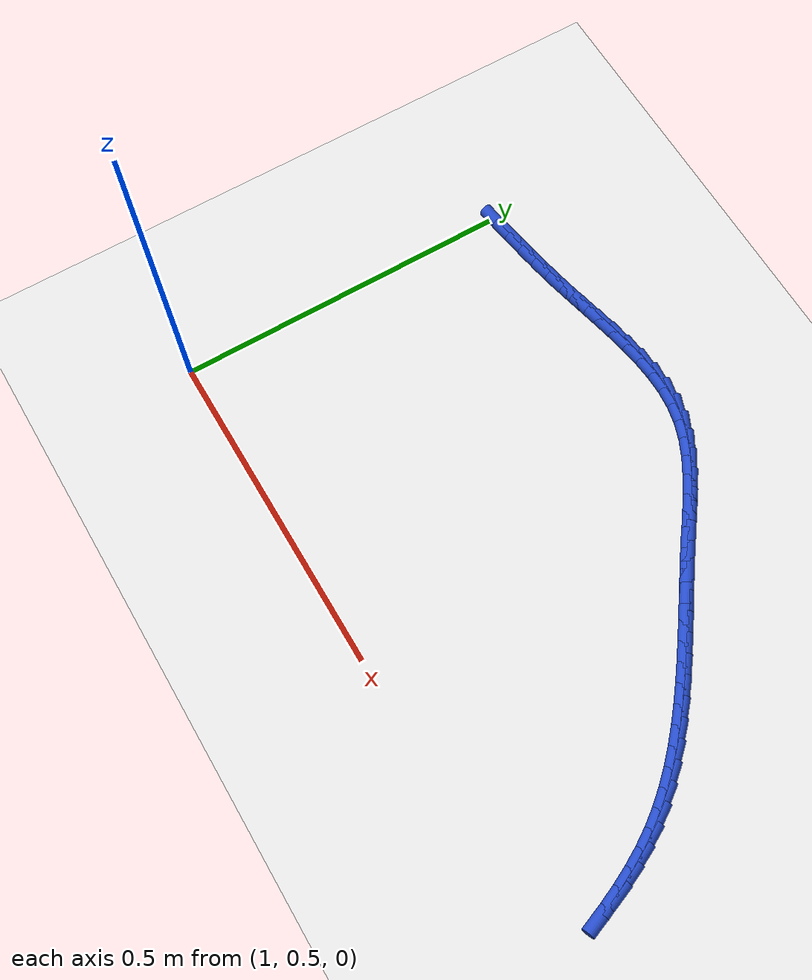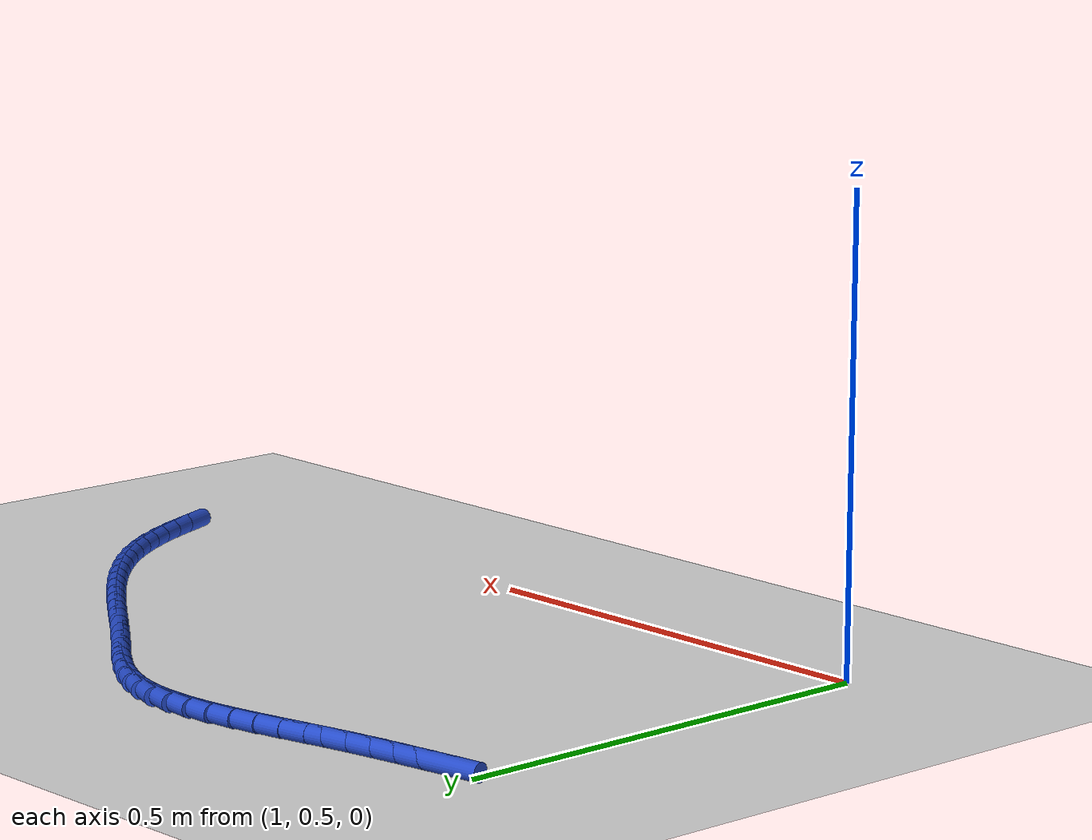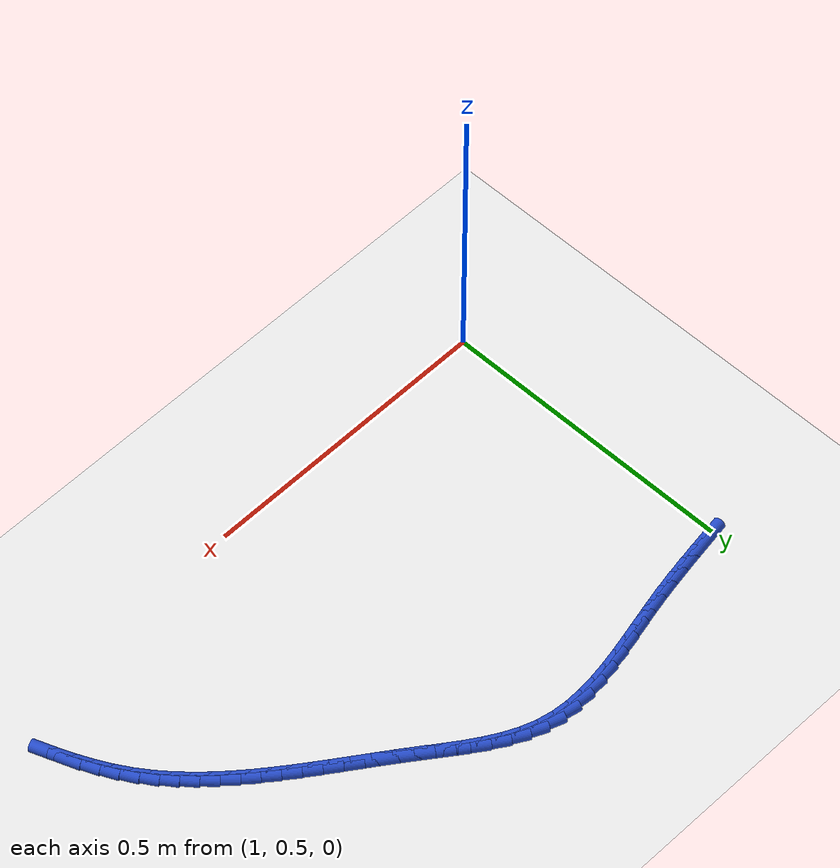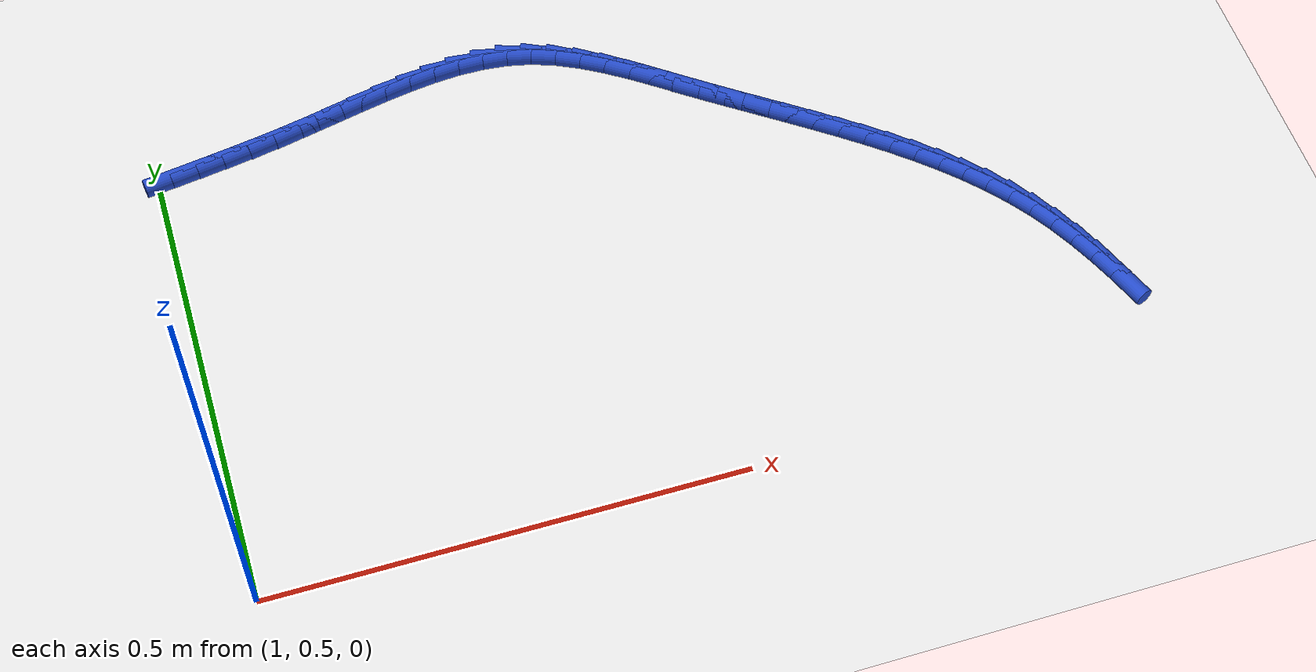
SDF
<sdf version="1.6">
 <world name="default">
  <model name="ground_plane">
   <static>1</static>
   <link name="link">
    <collision name="collision">
     <geometry><plane><normal>0 0 1</normal><size>100 100</size></plane></geometry>
     <surface><friction><ode><mu>100</mu><mu2>50</mu2></ode></friction></surface>
    </collision>
    <visual name="visual">
     <cast_shadows>0</cast_shadows>
     <geometry><plane><normal>0 0 1</normal><size>100 100</size></plane></geometry>
     <material>
      <script><uri>file://media/materials/scripts/gazebo.material</uri><name>Gazebo/WhiteGlow</name></script>
     </material>
    </visual>
   </link>
  </model>
  <model name="line">
   <link name="link_55">
    <pose>1.025591185893873 1.0081959456733693 0.01 0 1.57 0.15274449834497703</pose>
    <collision name="collision">
     <geometry><cylinder><radius>0.01</radius><length>0.08</length></cylinder></geometry>
    </collision>
    <visual name="visual">
     <material>
      <script><name>Gazebo/Blue</name><uri>file://media/materials/scripts/gazebo.material</uri></script>
     </material>
     <geometry><cylinder><radius>0.01</radius><length>0.08</length></cylinder></geometry>
    </visual>
   </link>
   <link name="link_56">
    <pose>1.0540436671600986 1.012576022435806 0.01 0 1.57 0.15959796919507002</pose>
    <collision name="collision">
     <geometry><cylinder><radius>0.01</radius><length>0.08</length></cylinder></geometry>
    </collision>
    <visual name="visual">
     <material>
      <script><name>Gazebo/Blue</name><uri>file://media/materials/scripts/gazebo.material</uri></script>
     </material>
     <geometry><cylinder><radius>0.01</radius><length>0.08</length></cylinder></geometry>
    </visual>
   </link>
   <link name="link_57">
    <pose>1.082658214277052 1.0171820198538 0.01 0 1.57 0.17080412431810776</pose>
    <collision name="collision">
     <geometry><cylinder><radius>0.01</radius><length>0.08</length></cylinder></geometry>
    </collision>
    <visual name="visual">
     <material>
      <script><name>Gazebo/Blue</name><uri>file://media/materials/scripts/gazebo.material</uri></script>
     </material>
     <geometry><cylinder><radius>0.01</radius><length>0.08</length></cylinder></geometry>
    </visual>
   </link>
   <link name="link_58">
    <pose>1.1114539324543788 1.0221488422581175 0.01 0 1.57 0.1862074624738569</pose>
    <collision name="collision">
     <geometry><cylinder><radius>0.01</radius><length>0.08</length></cylinder></geometry>
    </collision>
    <visual name="visual">
     <material>
      <script><name>Gazebo/Blue</name><uri>file://media/materials/scripts/gazebo.material</uri></script>
     </material>
     <geometry><cylinder><radius>0.01</radius><length>0.08</length></cylinder></geometry>
    </visual>
   </link>
   <link name="link_59">
    <pose>1.1404499269017243 1.0276113939795244 0.01 0 1.57 0.2055486253908169</pose>
    <collision name="collision">
     <geometry><cylinder><radius>0.01</radius><length>0.08</length></cylinder></geometry>
    </collision>
    <visual name="visual">
     <material>
      <script><name>Gazebo/Blue</name><uri>file://media/materials/scripts/gazebo.material</uri></script>
     </material>
     <geometry><cylinder><radius>0.01</radius><length>0.08</length></cylinder></geometry>
    </visual>
   </link>
   <link name="link_60">
    <pose>1.1696648374953547 1.0337025049223767 0.01 0 1.57 0.22237080389469602</pose>
    <collision name="collision">
     <geometry><cylinder><radius>0.01</radius><length>0.08</length></cylinder></geometry>
    </collision>
    <visual name="visual">
     <material>
      <script><name>Gazebo/Blue</name><uri>file://media/materials/scripts/gazebo.material</uri></script>
     </material>
     <geometry><cylinder><radius>0.01</radius><length>0.08</length></cylinder></geometry>
    </visual>
   </link>
   <link name="link_61">
    <pose>1.1990716973731266 1.0403516930710108 0.01 0 1.57 0.2255183421538735</pose>
    <collision name="collision">
     <geometry><cylinder><radius>0.01</radius><length>0.08</length></cylinder></geometry>
    </collision>
    <visual name="visual">
     <material>
      <script><name>Gazebo/Blue</name><uri>file://media/materials/scripts/gazebo.material</uri></script>
     </material>
     <geometry><cylinder><radius>0.01</radius><length>0.08</length></cylinder></geometry>
    </visual>
   </link>
   <link name="link_62">
    <pose>1.2285602045601212 1.0471169738122497 0.01 0 1.57 0.2139766904690584</pose>
    <collision name="collision">
     <geometry><cylinder><radius>0.01</radius><length>0.08</length></cylinder></geometry>
    </collision>
    <visual name="visual">
     <material>
      <script><name>Gazebo/Blue</name><uri>file://media/materials/scripts/gazebo.material</uri></script>
     </material>
     <geometry><cylinder><radius>0.01</radius><length>0.08</length></cylinder></geometry>
    </visual>
   </link>
   <link name="link_63">
    <pose>1.2580111753238985 1.0535167682265085 0.01 0 1.57 0.1873277203398336</pose>
    <collision name="collision">
     <geometry><cylinder><radius>0.01</radius><length>0.08</length></cylinder></geometry>
    </collision>
    <visual name="visual">
     <material>
      <script><name>Gazebo/Blue</name><uri>file://media/materials/scripts/gazebo.material</uri></script>
     </material>
     <geometry><cylinder><radius>0.01</radius><length>0.08</length></cylinder></geometry>
    </visual>
   </link>
   <link name="link_64">
    <pose>1.2873054259320185 1.0590694973942036 0.01 0 1.57 0.14455073356745138</pose>
    <collision name="collision">
     <geometry><cylinder><radius>0.01</radius><length>0.08</length></cylinder></geometry>
    </collision>
    <visual name="visual">
     <material>
      <script><name>Gazebo/Blue</name><uri>file://media/materials/scripts/gazebo.material</uri></script>
     </material>
     <geometry><cylinder><radius>0.01</radius><length>0.08</length></cylinder></geometry>
    </visual>
   </link>
   <link name="link_65">
    <pose>1.3163237726520411 1.063293582395751 0.01 0 1.57 0.08413311032034433</pose>
    <collision name="collision">
     <geometry><cylinder><radius>0.01</radius><length>0.08</length></cylinder></geometry>
    </collision>
    <visual name="visual">
     <material>
      <script><name>Gazebo/Blue</name><uri>file://media/materials/scripts/gazebo.material</uri></script>
     </material>
     <geometry><cylinder><radius>0.01</radius><length>0.08</length></cylinder></geometry>
    </visual>
   </link>
   <link name="link_66">
    <pose>1.3449470317515266 1.0657074443115666 0.01 0 1.57 0.004342352859184883</pose>
    <collision name="collision">
     <geometry><cylinder><radius>0.01</radius><length>0.08</length></cylinder></geometry>
    </collision>
    <visual name="visual">
     <material>
      <script><name>Gazebo/Blue</name><uri>file://media/materials/scripts/gazebo.material</uri></script>
     </material>
     <geometry><cylinder><radius>0.01</radius><length>0.08</length></cylinder></geometry>
    </visual>
   </link>
   <link name="link_67">
    <pose>1.3730560194980346 1.0658295042220658 0.01 0 1.57 -0.09619967052849505</pose>
    <collision name="collision">
     <geometry><cylinder><radius>0.01</radius><length>0.08</length></cylinder></geometry>
    </collision>
    <visual name="visual">
     <material>
      <script><name>Gazebo/Blue</name><uri>file://media/materials/scripts/gazebo.material</uri></script>
     </material>
     <geometry><cylinder><radius>0.01</radius><length>0.08</length></cylinder></geometry>
    </visual>
   </link>
   <link name="link_68">
    <pose>1.4005315521591255 1.063178183207665 0.01 0 1.57 -0.2174597473291746</pose>
    <collision name="collision">
     <geometry><cylinder><radius>0.01</radius><length>0.08</length></cylinder></geometry>
    </collision>
    <visual name="visual">
     <material>
      <script><name>Gazebo/Blue</name><uri>file://media/materials/scripts/gazebo.material</uri></script>
     </material>
     <geometry><cylinder><radius>0.01</radius><length>0.08</length></cylinder></geometry>
    </visual>
   </link>
   <link name="link_69">
    <pose>1.4272548723546117 1.0572735680588703 0.01 0 1.57 -0.3452900698255965</pose>
    <collision name="collision">
     <geometry><cylinder><radius>0.01</radius><length>0.08</length></cylinder></geometry>
    </collision>
    <visual name="visual">
     <material>
      <script><name>Gazebo/Blue</name><uri>file://media/materials/scripts/gazebo.material</uri></script>
     </material>
     <geometry><cylinder><radius>0.01</radius><length>0.08</length></cylinder></geometry>
    </visual>
   </link>
   <link name="link_70">
    <pose>1.4531866138608027 1.0479459178460448 0.01 0 1.57 -0.4512896890206143</pose>
    <collision name="collision">
     <geometry><cylinder><radius>0.01</radius><length>0.08</length></cylinder></geometry>
    </collision>
    <visual name="visual">
     <material>
      <script><name>Gazebo/Blue</name><uri>file://media/materials/scripts/gazebo.material</uri></script>
     </material>
     <geometry><cylinder><radius>0.01</radius><length>0.08</length></cylinder></geometry>
    </visual>
   </link>
   <link name="link_71">
    <pose>1.4784594251466248 1.0356975336116492 0.01 0 1.57 -0.5319905905998654</pose>
    <collision name="collision">
     <geometry><cylinder><radius>0.01</radius><length>0.08</length></cylinder></geometry>
    </collision>
    <visual name="visual">
     <material>
      <script><name>Gazebo/Blue</name><uri>file://media/materials/scripts/gazebo.material</uri></script>
     </material>
     <geometry><cylinder><radius>0.01</radius><length>0.08</length></cylinder></geometry>
    </visual>
   </link>
   <link name="link_72">
    <pose>1.50322845639373 1.0211186280478142 0.01 0 1.57 -0.5891059102644991</pose>
    <collision name="collision">
     <geometry><cylinder><radius>0.01</radius><length>0.08</length></cylinder></geometry>
    </collision>
    <visual name="visual">
     <material>
      <script><name>Gazebo/Blue</name><uri>file://media/materials/scripts/gazebo.material</uri></script>
     </material>
     <geometry><cylinder><radius>0.01</radius><length>0.08</length></cylinder></geometry>
    </visual>
   </link>
   <link name="link_73">
    <pose>1.5276488577837697 1.004799413846672 0.01 0 1.57 -0.6247274852756172</pose>
    <collision name="collision">
     <geometry><cylinder><radius>0.01</radius><length>0.08</length></cylinder></geometry>
    </collision>
    <visual name="visual">
     <material>
      <script><name>Gazebo/Blue</name><uri>file://media/materials/scripts/gazebo.material</uri></script>
     </material>
     <geometry><cylinder><radius>0.01</radius><length>0.08</length></cylinder></geometry>
    </visual>
   </link>
   <link name="link_74">
    <pose>1.551875779498397 0.9873301037003539 0.01 0 1.57 -0.6405244717120651</pose>
    <collision name="collision">
     <geometry><cylinder><radius>0.01</radius><length>0.08</length></cylinder></geometry>
    </collision>
    <visual name="visual">
     <material>
      <script><name>Gazebo/Blue</name><uri>file://media/materials/scripts/gazebo.material</uri></script>
     </material>
     <geometry><cylinder><radius>0.01</radius><length>0.08</length></cylinder></geometry>
    </visual>
   </link>
   <link name="link_75">
    <pose>1.5760643717192635 0.9693009103009919 0.01 0 1.57 -0.6377240859548199</pose>
    <collision name="collision">
     <geometry><cylinder><radius>0.01</radius><length>0.08</length></cylinder></geometry>
    </collision>
    <visual name="visual">
     <material>
      <script><name>Gazebo/Blue</name><uri>file://media/materials/scripts/gazebo.material</uri></script>
     </material>
     <geometry><cylinder><radius>0.01</radius><length>0.08</length></cylinder></geometry>
    </visual>
   </link>
   <link name="link_76">
    <pose>1.600366132557497 0.9512930079767797 0.01 0 1.57 -0.6269550194163164</pose>
    <collision name="collision">
     <geometry><cylinder><radius>0.01</radius><length>0.08</length></cylinder></geometry>
    </collision>
    <visual name="visual">
     <material>
      <script><name>Gazebo/Blue</name><uri>file://media/materials/scripts/gazebo.material</uri></script>
     </material>
     <geometry><cylinder><radius>0.01</radius><length>0.08</length></cylinder></geometry>
    </visual>
   </link>
   <link name="link_77">
    <pose>1.6248100373235916 0.9335843442547185 0.01 0 1.57 -0.6208900457566988</pose>
    <collision name="collision">
     <geometry><cylinder><radius>0.01</radius><length>0.08</length></cylinder></geometry>
    </collision>
    <visual name="visual">
     <material>
      <script><name>Gazebo/Blue</name><uri>file://media/materials/scripts/gazebo.material</uri></script>
     </material>
     <geometry><cylinder><radius>0.01</radius><length>0.08</length></cylinder></geometry>
    </visual>
   </link>
   <link name="link_78">
    <pose>1.6492763188886361 0.9160847499205257 0.01 0 1.57 -0.6203286178116589</pose>
    <collision name="collision">
     <geometry><cylinder><radius>0.01</radius><length>0.08</length></cylinder></geometry>
    </collision>
    <visual name="visual">
     <material>
      <script><name>Gazebo/Blue</name><uri>file://media/materials/scripts/gazebo.material</uri></script>
     </material>
     <geometry><cylinder><radius>0.01</radius><length>0.08</length></cylinder></geometry>
    </visual>
   </link>
   <link name="link_79">
    <pose>1.6736362522315382 0.898681886229206 0.01 0 1.57 -0.6253477756514012</pose>
    <collision name="collision">
     <geometry><cylinder><radius>0.01</radius><length>0.08</length></cylinder></geometry>
    </collision>
    <visual name="visual">
     <material>
      <script><name>Gazebo/Blue</name><uri>file://media/materials/scripts/gazebo.material</uri></script>
     </material>
     <geometry><cylinder><radius>0.01</radius><length>0.08</length></cylinder></geometry>
    </visual>
   </link>
   <link name="link_80">
    <pose>1.6977611123312055 0.8812634144357652 0.01 0 1.57 -0.6360697388973086</pose>
    <collision name="collision">
     <geometry><cylinder><radius>0.01</radius><length>0.08</length></cylinder></geometry>
    </collision>
    <visual name="visual">
     <material>
      <script><name>Gazebo/Blue</name><uri>file://media/materials/scripts/gazebo.material</uri></script>
     </material>
     <geometry><cylinder><radius>0.01</radius><length>0.08</length></cylinder></geometry>
    </visual>
   </link>
   <link name="link_81">
    <pose>1.7215221741665465 0.8637169957952088 0.01 0 1.57 -0.6526599198244101</pose>
    <collision name="collision">
     <geometry><cylinder><radius>0.01</radius><length>0.08</length></cylinder></geometry>
    </collision>
    <visual name="visual">
     <material>
      <script><name>Gazebo/Blue</name><uri>file://media/materials/scripts/gazebo.material</uri></script>
     </material>
     <geometry><cylinder><radius>0.01</radius><length>0.08</length></cylinder></geometry>
    </visual>
   </link>
   <link name="link_82">
    <pose>1.7447907127164677 0.8459302915625423 0.01 0 1.57 -0.6753194431379613</pose>
    <collision name="collision">
     <geometry><cylinder><radius>0.01</radius><length>0.08</length></cylinder></geometry>
    </collision>
    <visual name="visual">
     <material>
      <script><name>Gazebo/Blue</name><uri>file://media/materials/scripts/gazebo.material</uri></script>
     </material>
     <geometry><cylinder><radius>0.01</radius><length>0.08</length></cylinder></geometry>
    </visual>
   </link>
   <link name="link_83">
    <pose>1.7674380029598775 0.8277909629927702 0.01 0 1.57 -0.704270582120666</pose>
    <collision name="collision">
     <geometry><cylinder><radius>0.01</radius><length>0.08</length></cylinder></geometry>
    </collision>
    <visual name="visual">
     <material>
      <script><name>Gazebo/Blue</name><uri>file://media/materials/scripts/gazebo.material</uri></script>
     </material>
     <geometry><cylinder><radius>0.01</radius><length>0.08</length></cylinder></geometry>
    </visual>
   </link>
   <link name="link_84">
    <pose>1.7893353198756836 0.809186671340899 0.01 0 1.57 -0.7397330313398277</pose>
    <collision name="collision">
     <geometry><cylinder><radius>0.01</radius><length>0.08</length></cylinder></geometry>
    </collision>
    <visual name="visual">
     <material>
      <script><name>Gazebo/Blue</name><uri>file://media/materials/scripts/gazebo.material</uri></script>
     </material>
     <geometry><cylinder><radius>0.01</radius><length>0.08</length></cylinder></geometry>
    </visual>
   </link>
   <link name="link_85">
    <pose>1.8103539384427936 0.7900050778619335 0.01 0 1.57 -0.7818888342430856</pose>
    <collision name="collision">
     <geometry><cylinder><radius>0.01</radius><length>0.08</length></cylinder></geometry>
    </collision>
    <visual name="visual">
     <material>
      <script><name>Gazebo/Blue</name><uri>file://media/materials/scripts/gazebo.material</uri></script>
     </material>
     <geometry><cylinder><radius>0.01</radius><length>0.08</length></cylinder></geometry>
    </visual>
   </link>
   <link name="link_86">
    <pose>1.830365133640115 0.7701338438108795 0.01 0 1.57 -0.8308345231119459</pose>
    <collision name="collision">
     <geometry><cylinder><radius>0.01</radius><length>0.08</length></cylinder></geometry>
    </collision>
    <visual name="visual">
     <material>
      <script><name>Gazebo/Blue</name><uri>file://media/materials/scripts/gazebo.material</uri></script>
     </material>
     <geometry><cylinder><radius>0.01</radius><length>0.08</length></cylinder></geometry>
    </visual>
   </link>
   <link name="link_87">
    <pose>1.8492401804465555 0.7494606304427421 0.01 0 1.57 -0.8865212134596853</pose>
    <collision name="collision">
     <geometry><cylinder><radius>0.01</radius><length>0.08</length></cylinder></geometry>
    </collision>
    <visual name="visual">
     <material>
      <script><name>Gazebo/Blue</name><uri>file://media/materials/scripts/gazebo.material</uri></script>
     </material>
     <geometry><cylinder><radius>0.01</radius><length>0.08</length></cylinder></geometry>
    </visual>
   </link>
   <link name="link_88">
    <pose>1.866850353841023 0.7278730990125264 0.01 0 1.57 -0.948687541981576</pose>
    <collision name="collision">
     <geometry><cylinder><radius>0.01</radius><length>0.08</length></cylinder></geometry>
    </collision>
    <visual name="visual">
     <material>
      <script><name>Gazebo/Blue</name><uri>file://media/materials/scripts/gazebo.material</uri></script>
     </material>
     <geometry><cylinder><radius>0.01</radius><length>0.08</length></cylinder></geometry>
    </visual>
   </link>
   <link name="link_89">
    <pose>1.883066928802426 0.7052589107752386 0.01 0 1.57 -1.0153926227673609</pose>
    <collision name="collision">
     <geometry><cylinder><radius>0.01</radius><length>0.08</length></cylinder></geometry>
    </collision>
    <visual name="visual">
     <material>
      <script><name>Gazebo/Blue</name><uri>file://media/materials/scripts/gazebo.material</uri></script>
     </material>
     <geometry><cylinder><radius>0.01</radius><length>0.08</length></cylinder></geometry>
    </visual>
   </link>
   <link name="link_90">
    <pose>1.8977922448586817 0.6815300228409591 0.01 0 1.57 -1.0767446248066326</pose>
    <collision name="collision">
     <geometry><cylinder><radius>0.01</radius><length>0.08</length></cylinder></geometry>
    </collision>
    <visual name="visual">
     <material>
      <script><name>Gazebo/Blue</name><uri>file://media/materials/scripts/gazebo.material</uri></script>
     </material>
     <geometry><cylinder><radius>0.01</radius><length>0.08</length></cylinder></geometry>
    </visual>
   </link>
   <link name="link_91">
    <pose>1.911134007705103 0.6567590109928068 0.01 0 1.57 -1.1288276370921122</pose>
    <collision name="collision">
     <geometry><cylinder><radius>0.01</radius><length>0.08</length></cylinder></geometry>
    </collision>
    <visual name="visual">
     <material>
      <script><name>Gazebo/Blue</name><uri>file://media/materials/scripts/gazebo.material</uri></script>
     </material>
     <geometry><cylinder><radius>0.01</radius><length>0.08</length></cylinder></geometry>
    </visual>
   </link>
   <link name="link_92">
    <pose>1.9232832778422686 0.6310836435350562 0.01 0 1.57 -1.1718017173528272</pose>
    <collision name="collision">
     <geometry><cylinder><radius>0.01</radius><length>0.08</length></cylinder></geometry>
    </collision>
    <visual name="visual">
     <material>
      <script><name>Gazebo/Blue</name><uri>file://media/materials/scripts/gazebo.material</uri></script>
     </material>
     <geometry><cylinder><radius>0.01</radius><length>0.08</length></cylinder></geometry>
    </visual>
   </link>
   <link name="link_93">
    <pose>1.9344313548851955 0.6046418757854741 0.01 0 1.57 -1.2059878715627956</pose>
    <collision name="collision">
     <geometry><cylinder><radius>0.01</radius><length>0.08</length></cylinder></geometry>
    </collision>
    <visual name="visual">
     <material>
      <script><name>Gazebo/Blue</name><uri>file://media/materials/scripts/gazebo.material</uri></script>
     </material>
     <geometry><cylinder><radius>0.01</radius><length>0.08</length></cylinder></geometry>
    </visual>
   </link>
  </model>
 </world>
</sdf>
